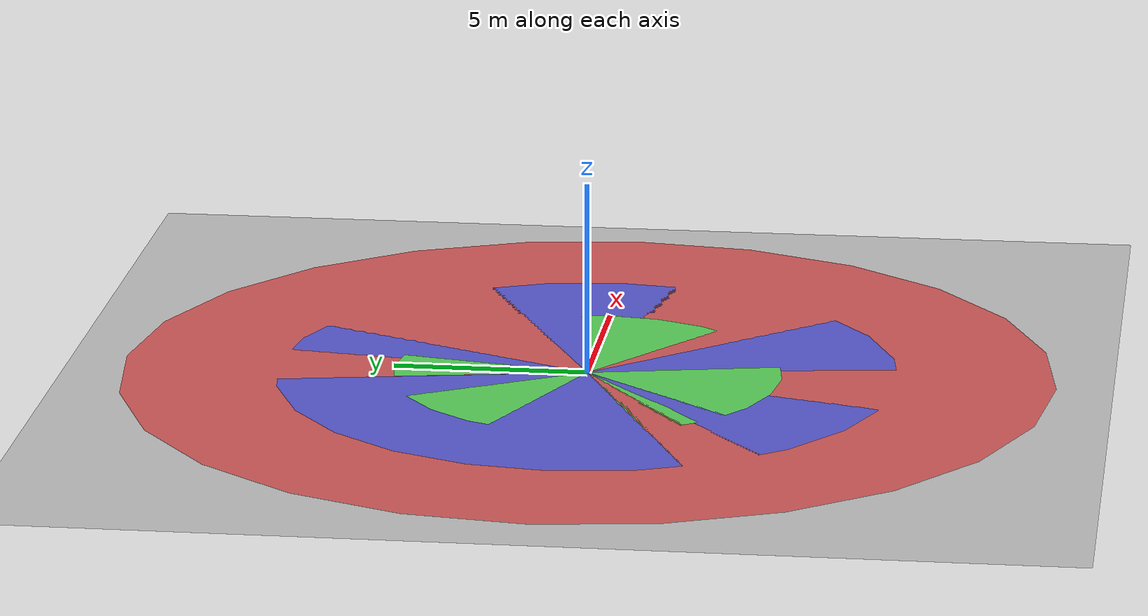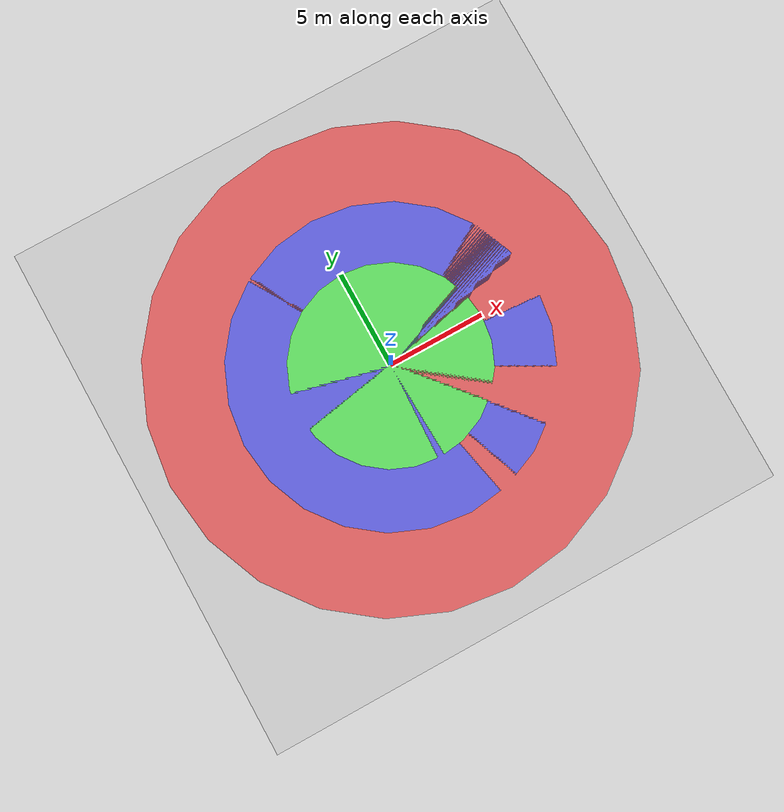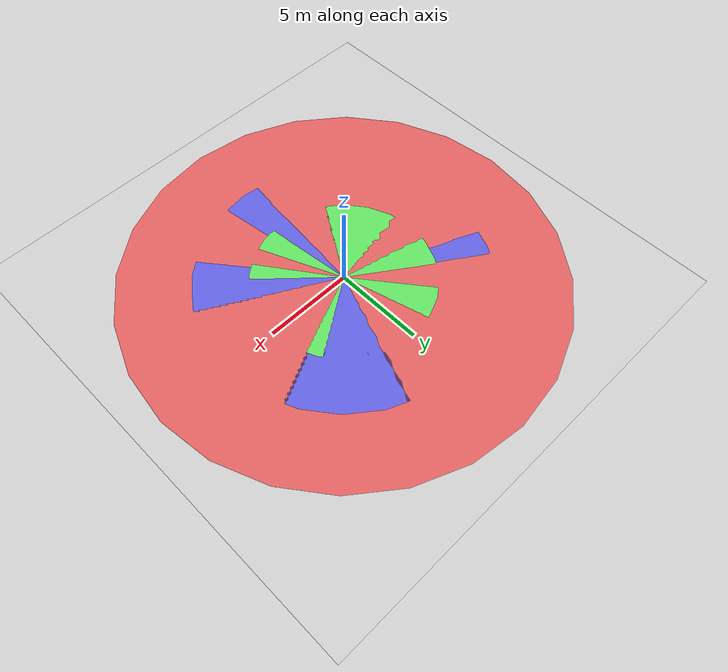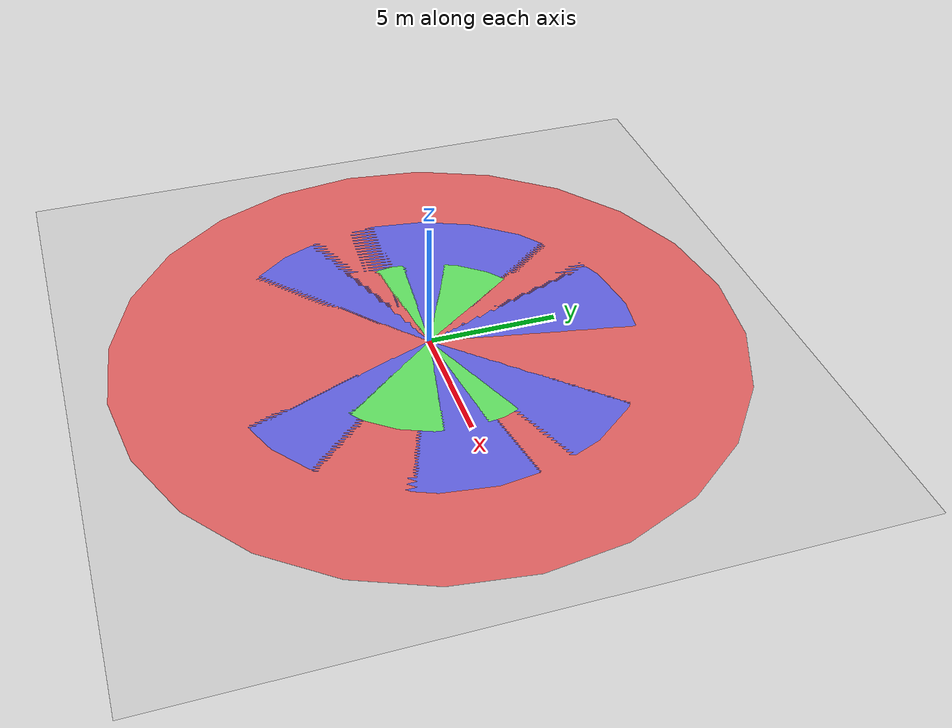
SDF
<?xml version="1.0"?>
<sdf version="1.4">
<world name="racecar_tunnel">

  <include>
    <uri>model://sun</uri>
  </include>

  <model name="ground_plane">
    <static>true</static>
    <link name="link">
      <collision name="collision">
        <geometry>
          <plane>
            <normal>0 0 1</normal>
            <size>150 150</size>
          </plane>
        </geometry>
        <surface>
          <friction>
            <ode>
              <mu>100</mu>
              <mu2>50</mu2>
            </ode>
          </friction>
        </surface>
      </collision>
      <visual name="visual">
        <cast_shadows>false</cast_shadows>
        <geometry>
          <plane>
            <normal>0 0 1</normal>
            <size>150 150</size>
          </plane>
        </geometry>
        <material>
          <script>
            <uri>file://media/materials/scripts/gazebo.material</uri>
            <name>Gazebo/Grey</name>
          </script>
        </material>
      </visual>
    </link>
  </model>

<!-- Static circle with radius 5 -->
  <model name="circle_5">
    <static>true</static>
    <link name="link">
      <visual name="visual">
        <geometry>
          <cylinder>
            <radius>5</radius>
            <length>0.01</length>
          </cylinder>
        </geometry>
        <pose>0 0 0.005 0 0 0</pose> <!-- Slightly above ground -->
        <material>
          <ambient>0 1 0 0.5</ambient> <!-- Semi-transparent green -->
          <diffuse>0 1 0 0.5</diffuse>
        </material>
      </visual>
    </link>
  </model>

  <!-- Static circle with radius 8 -->
  <model name="circle_8">
    <static>true</static>
    <link name="link">
      <visual name="visual">
        <geometry>
          <cylinder>
            <radius>8</radius>
            <length>0.01</length>
          </cylinder>
        </geometry>
        <pose>0 0 0.005 0 0 0</pose> <!-- Slightly above ground -->
        <material>
          <ambient>0 0 1 0.5</ambient> <!-- Semi-transparent blue -->
          <diffuse>0 0 1 0.5</diffuse>
        </material>
      </visual>
    </link>
  </model>

  <!-- Static circle with radius 12 -->
  <model name="circle_12">
    <static>true</static>
    <link name="link">
      <visual name="visual">
        <geometry>
          <cylinder>
            <radius>12</radius>
            <length>0.01</length>
          </cylinder>
        </geometry>
        <pose>0 0 0.005 0 0 0</pose> <!-- Slightly above ground -->
        <material>
          <ambient>1 0 0 0.5</ambient> <!-- Semi-transparent red -->
          <diffuse>1 0 0 0.5</diffuse>
        </material>
      </visual>
    </link>
  </model>

</world>
</sdf>
